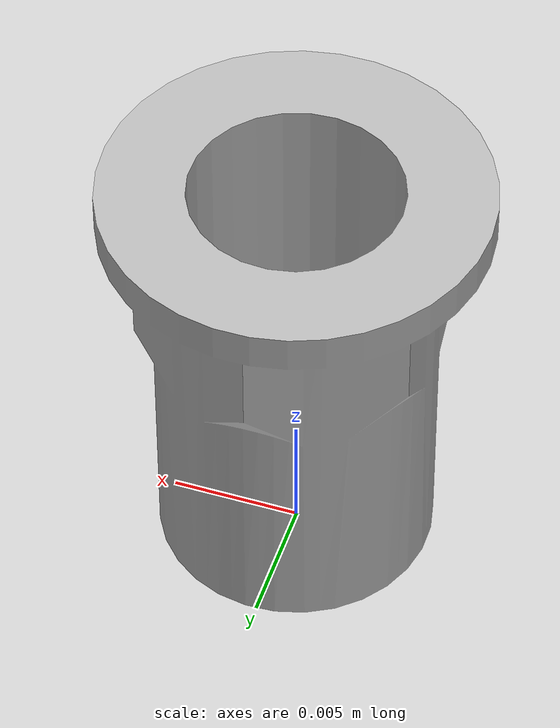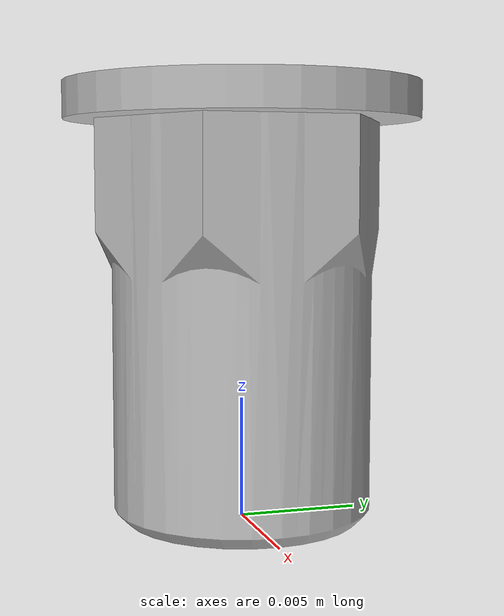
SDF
<?xml version='1.0'?>
<sdf version='1.6'>
  <model name='nut'>
    <link name='nut_body_base_link'>
      <pose frame=''>0 0 0 0 -0 0</pose>
      <inertial>
        <pose frame=''>-0 0 0.010366 0 -0 0</pose>
        <mass>0.00086505</mass>
        <inertia>
          <ixx>3.7161e-08</ixx>
          <ixy>-2.4346e-16</ixy>
          <ixz>-5.7177e-16</ixz>
          <iyy>3.7161e-08</iyy>
          <iyz>-3.1456e-15</iyz>
          <izz>2.1793e-08</izz>
        </inertia>
      </inertial>
      <self_collide>0</self_collide>
      <enable_wind>0</enable_wind>
      <kinematic>0</kinematic>
      <visual name='nut_body_base_link_visual'>
        <pose frame=''>0 0 0 0 -0 0</pose>
        <geometry>
          <mesh>
            <scale>1 1 1</scale>
            <uri>model://nut/meshes/nut_body_base_link.STL</uri>
          </mesh>
        </geometry>
        <transparency>0</transparency>
        <cast_shadows>1</cast_shadows>
      </visual>
      <collision name='nut_body_base_link_collision'>
        <laser_retro>0</laser_retro>
        <max_contacts>10</max_contacts>
        <pose frame=''>0 0 0 0 -0 0</pose>
        <geometry>
          <mesh>
            <uri>model://nut/meshes/nut_body_base_link.STL</uri>
            <scale>1 1 1</scale>
          </mesh>
        </geometry>
        <surface>
          <friction>
            <ode>
              <mu>1</mu>
              <mu2>1</mu2>
              <fdir1>0 0 0</fdir1>
              <slip1>0</slip1>
              <slip2>0</slip2>
            </ode>
            <torsional>
              <coefficient>1</coefficient>
              <patch_radius>0</patch_radius>
              <surface_radius>0</surface_radius>
              <use_patch_radius>1</use_patch_radius>
              <ode>
                <slip>0</slip>
              </ode>
            </torsional>
          </friction>
          <bounce>
            <restitution_coefficient>0</restitution_coefficient>
            <threshold>1e+06</threshold>
          </bounce>
          <contact>
            <collide_without_contact>0</collide_without_contact>
            <collide_without_contact_bitmask>1</collide_without_contact_bitmask>
            <collide_bitmask>1</collide_bitmask>
            <ode>
              <soft_cfm>0</soft_cfm>
              <soft_erp>0.2</soft_erp>
              <kp>1e+13</kp>
              <kd>1</kd>
              <max_vel>0.01</max_vel>
              <min_depth>0.001</min_depth>
            </ode>
            <bullet>
              <split_impulse>1</split_impulse>
              <split_impulse_penetration_threshold>-0.01</split_impulse_penetration_threshold>
              <soft_cfm>0</soft_cfm>
              <soft_erp>0.2</soft_erp>
              <kp>1e+13</kp>
              <kd>1</kd>
            </bullet>
          </contact>
        </surface>
      </collision>
    </link>
    <static>0</static>
    <allow_auto_disable>1</allow_auto_disable>
  </model>
</sdf>
